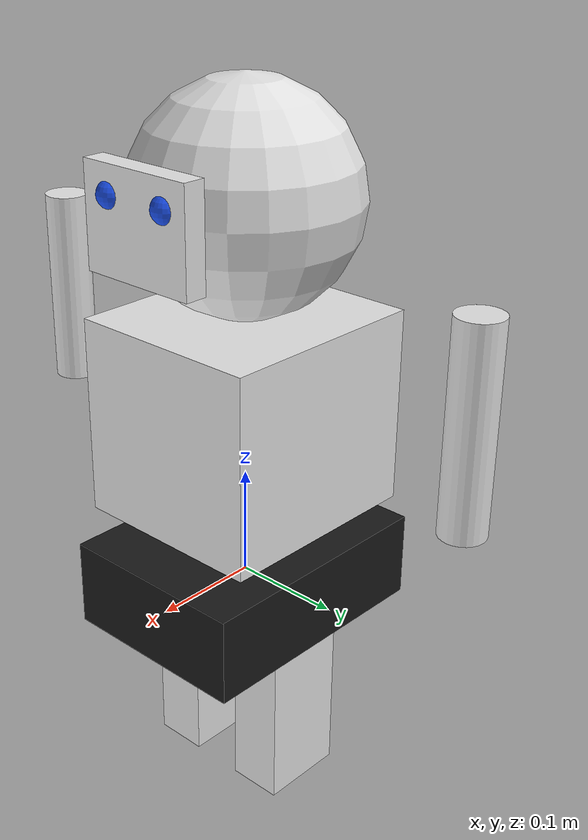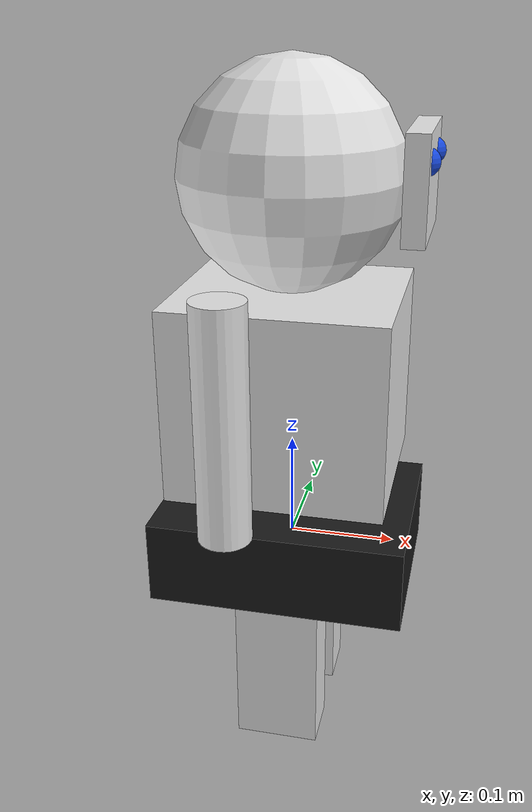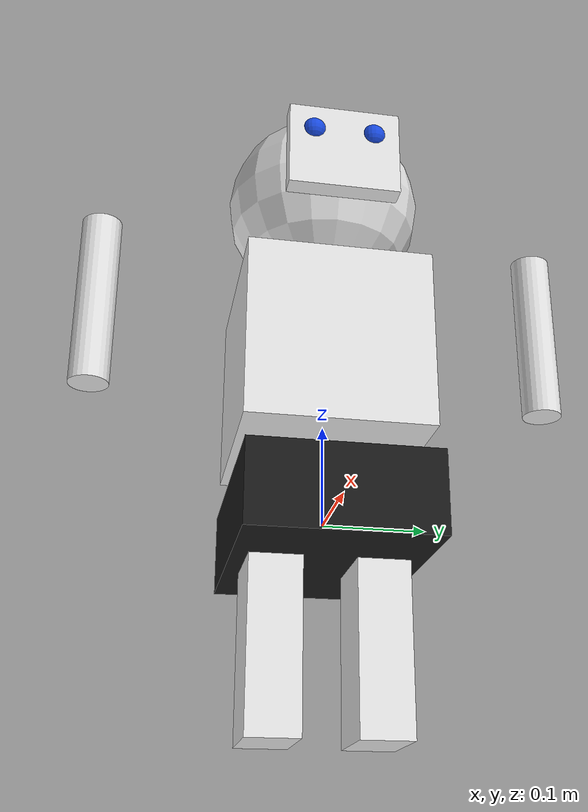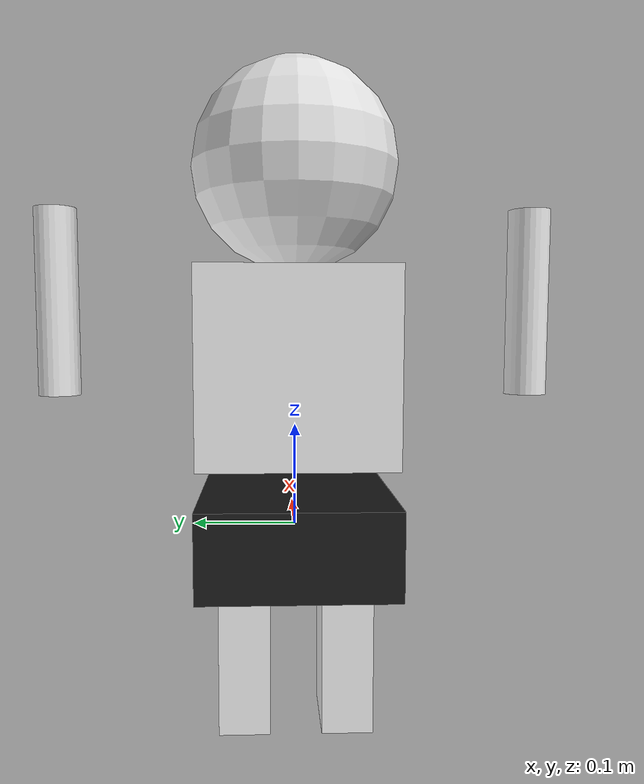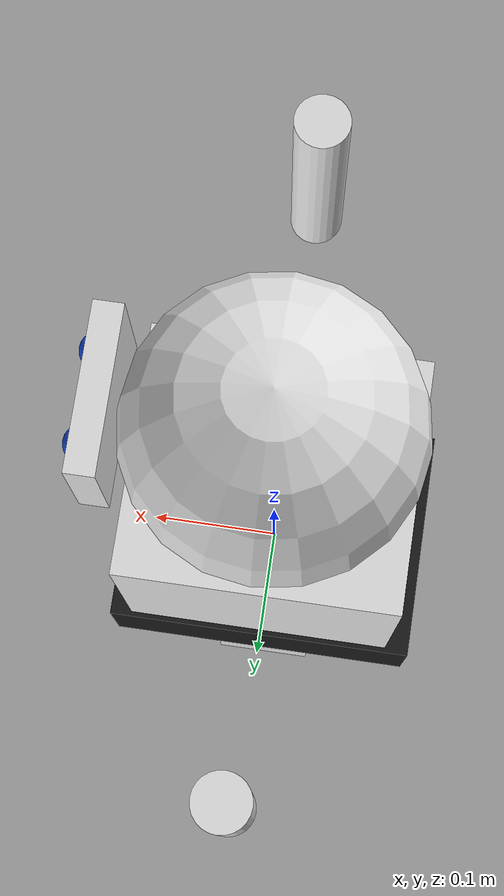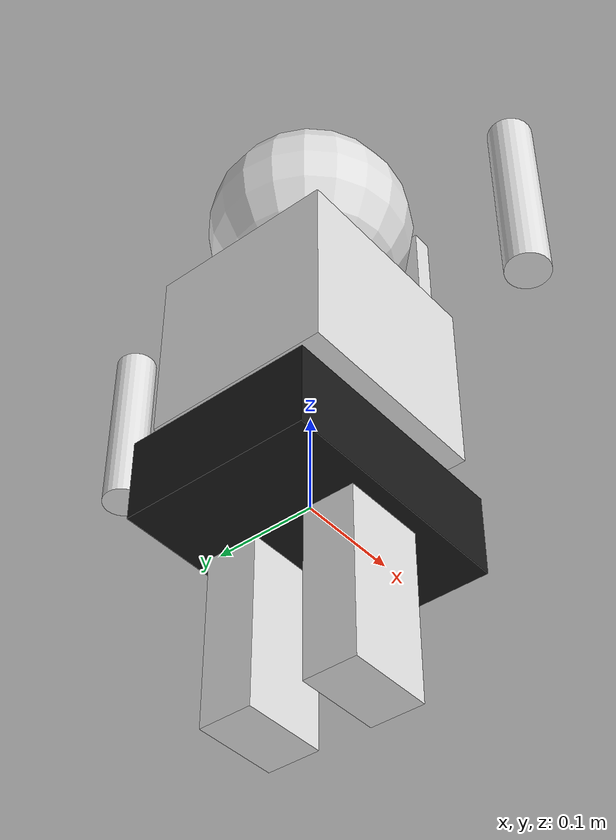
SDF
<?xml version="1.0"?>
<sdf version="1.6">
  <model name="simple_humanoid">
    <static>false</static>

    <!-- base -->
    <link name="base">
      <pose>0 0 0 0 0 0</pose>
      <visual name="base_vis">
        <geometry>
          <box>
            <size>0.24 0.18 0.08</size>
          </box>
        </geometry>
        <material>
          <ambient>0.1 0.1 0.1 1</ambient>
          <diffuse>0.1 0.1 0.1 1</diffuse>
        </material>
      </visual>
      <collision name="base_col">
        <geometry>
          <box>
            <size>0.24 0.18 0.08</size>
          </box>
        </geometry>
      </collision>
    </link>

    <!-- torso -->
    <link name="torso">
      <pose>0 0 0.16 0 0 0</pose>
      <visual name="torso_vis">
        <geometry>
          <box>
            <size>0.20 0.18 0.18</size>
          </box>
        </geometry>
        <material>
          <ambient>0.9 0.9 0.9 1</ambient>
          <diffuse>0.9 0.9 0.9 1</diffuse>
        </material>
      </visual>
      <collision name="torso_col">
        <geometry>
          <box>
            <size>0.20 0.18 0.18</size>
          </box>
        </geometry>
      </collision>
    </link>

    <!-- head -->
    <link name="head">
      <pose>0 0 0.35 0 0 0</pose>
      <visual name="head_vis">
        <geometry>
          <sphere>
            <radius>0.10</radius>
          </sphere>
        </geometry>
        <material>
          <ambient>0.9 0.9 0.9 1</ambient>
          <diffuse>0.9 0.9 0.9 1</diffuse>
        </material>
      </visual>
      <collision name="head_col">
        <geometry>
          <sphere>
            <radius>0.10</radius>
          </sphere>
        </geometry>
      </collision>
    </link>

    <!-- face plate -->
    <link name="face">
      <pose>0.11 0 0.35 0 0 0</pose>
      <visual name="face_vis">
        <geometry>
          <box>
            <size>0.02 0.11 0.09</size>
          </box>
        </geometry>
        <material>
          <ambient>0.9 0.9 0.9 1</ambient>
          <diffuse>0.9 0.9 0.9 1</diffuse>
        </material>
      </visual>
    </link>

    <!-- eyes -->
    <link name="left_eye">
      <pose>0.115 0.03 0.37 0 0 0</pose>
      <visual name="left_eye_vis">
        <geometry>
          <sphere>
            <radius>0.012</radius>
          </sphere>
        </geometry>
        <material>
          <ambient>0.1 0.3 0.9 1</ambient>
          <diffuse>0.1 0.3 0.9 1</diffuse>
        </material>
      </visual>
    </link>

    <link name="right_eye">
      <pose>0.115 -0.03 0.37 0 0 0</pose>
      <visual name="right_eye_vis">
        <geometry>
          <sphere>
            <radius>0.012</radius>
          </sphere>
        </geometry>
        <material>
          <ambient>0.1 0.3 0.9 1</ambient>
          <diffuse>0.1 0.3 0.9 1</diffuse>
        </material>
      </visual>
    </link>

    <!-- mouth -->
    <link name="mouth">
      <pose>0.115 0 0.33 0 0 0</pose>
      <visual name="mouth_vis">
        <geometry>
          <box>
            <size>0.005 0.05 0.01</size>
          </box>
        </geometry>
        <material>
          <ambient>0.1 0.1 0.1 1</ambient>
          <diffuse>0.1 0.1 0.1 1</diffuse>
        </material>
      </visual>
    </link>

    <!-- arms -->
    <link name="left_arm">
      <pose>0 0.23 0.22 0 0 1.57</pose>
      <visual name="left_arm_vis">
        <geometry>
          <cylinder>
            <radius>0.02</radius>
            <length>0.18</length>
          </cylinder>
        </geometry>
        <material>
          <ambient>0.9 0.9 0.9 1</ambient>
          <diffuse>0.9 0.9 0.9 1</diffuse>
        </material>
      </visual>
    </link>

    <link name="right_arm">
      <pose>0 -0.23 0.22 0 0 1.57</pose>
      <visual name="right_arm_vis">
        <geometry>
          <cylinder>
            <radius>0.02</radius>
            <length>0.18</length>
          </cylinder>
        </geometry>
        <material>
          <ambient>0.9 0.9 0.9 1</ambient>
          <diffuse>0.9 0.9 0.9 1</diffuse>
        </material>
      </visual>
    </link>

    <!-- legs -->
    <link name="left_leg">
      <pose>0 0.05 -0.10 0 0 0</pose>
      <visual name="left_leg_vis">
        <geometry>
          <box>
            <size>0.08 0.05 0.20</size>
          </box>
        </geometry>
        <material>
          <ambient>0.9 0.9 0.9 1</ambient>
          <diffuse>0.9 0.9 0.9 1</diffuse>
        </material>
      </visual>
    </link>

    <link name="right_leg">
      <pose>0 -0.05 -0.10 0 0 0</pose>
      <visual name="right_leg_vis">
        <geometry>
          <box>
            <size>0.08 0.05 0.20</size>
          </box>
        </geometry>
        <material>
          <ambient>0.9 0.9 0.9 1</ambient>
          <diffuse>0.9 0.9 0.9 1</diffuse>
        </material>
      </visual>
    </link>

    <!-- simple joints (all fixed) -->
    <joint name="base_torso" type="fixed">
      <parent>base</parent>
      <child>torso</child>
    </joint>
    <joint name="torso_head" type="fixed">
      <parent>torso</parent>
      <child>head</child>
    </joint>
    <joint name="head_face" type="fixed">
      <parent>head</parent>
      <child>face</child>
    </joint>
    <joint name="head_left_eye" type="fixed">
      <parent>head</parent>
      <child>left_eye</child>
    </joint>
    <joint name="head_right_eye" type="fixed">
      <parent>head</parent>
      <child>right_eye</child>
    </joint>
    <joint name="head_mouth" type="fixed">
      <parent>head</parent>
      <child>mouth</child>
    </joint>
    <joint name="torso_left_arm" type="fixed">
      <parent>torso</parent>
      <child>left_arm</child>
    </joint>
    <joint name="torso_right_arm" type="fixed">
      <parent>torso</parent>
      <child>right_arm</child>
    </joint>
    <joint name="base_left_leg" type="fixed">
      <parent>base</parent>
      <child>left_leg</child>
    </joint>
    <joint name="base_right_leg" type="fixed">
      <parent>base</parent>
      <child>right_leg</child>
    </joint>

  </model>
</sdf>
